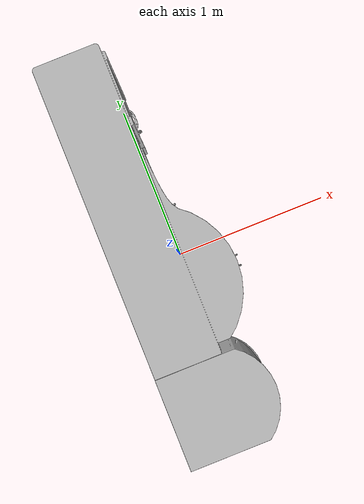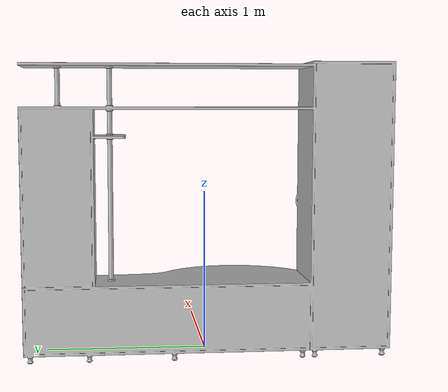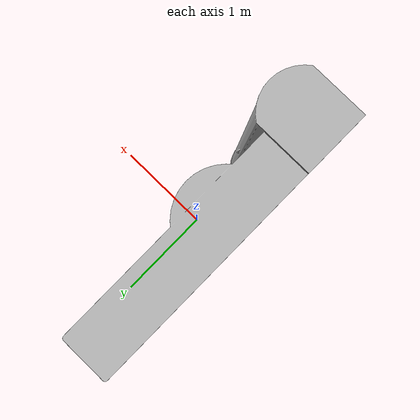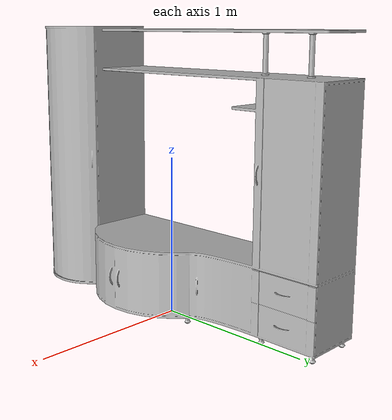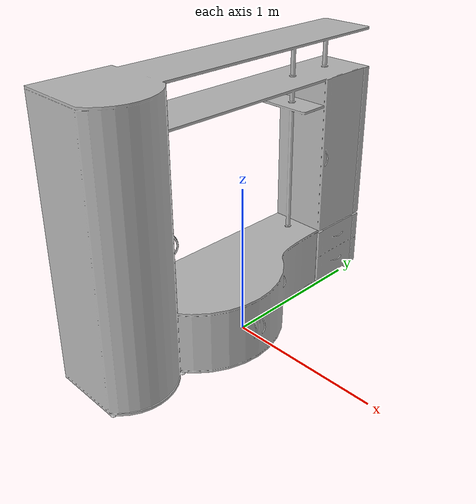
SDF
<?xml version='1.0'?>
<sdf version='1.4'>
  <model name='s__516'>
    <pose>0 0 0 0 0 0</pose>
    <static>true</static>
    <link name='link'>
      <collision name='collision'>
        <pose>0 0 0 0 0 0</pose>
        <geometry>
          <box>
            <size>0.680149 2.23 2</size>
          </box>
        </geometry>
      </collision>
      <visual name='visual'>
        <pose>0 0 0 0 0 0</pose>
        <geometry>
          <mesh><uri>model://s__516/s__516.dae</uri></mesh>
        </geometry>
      </visual>
    </link>
  </model>
</sdf>
